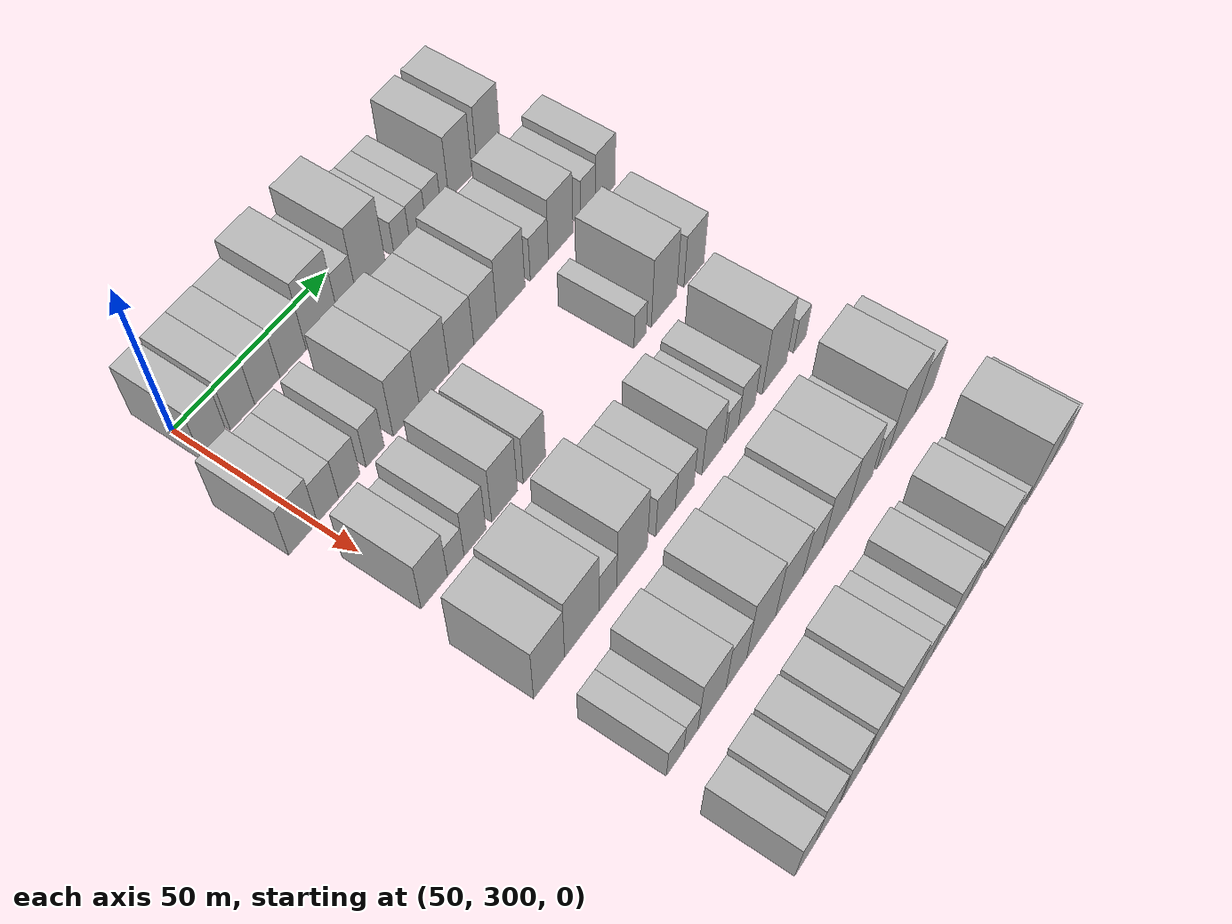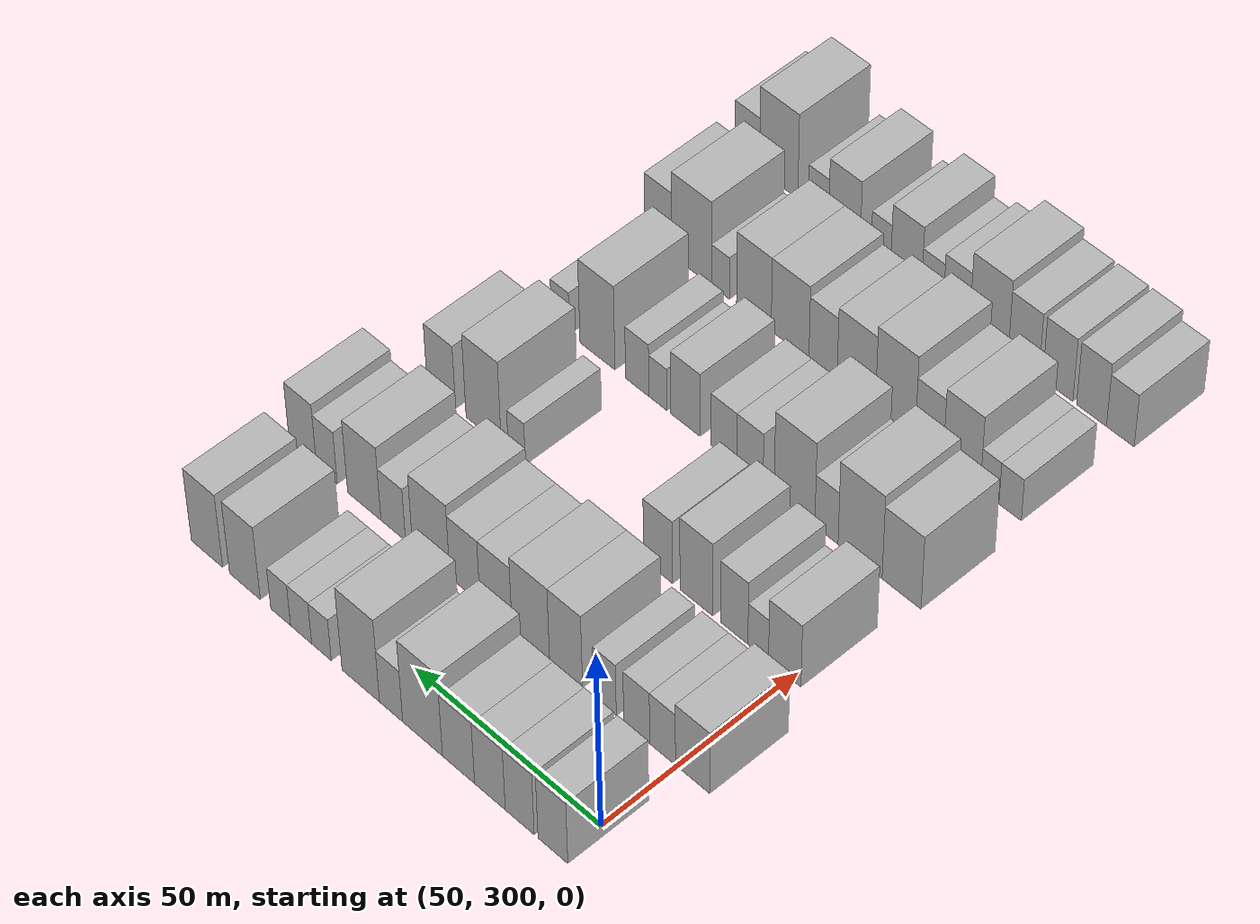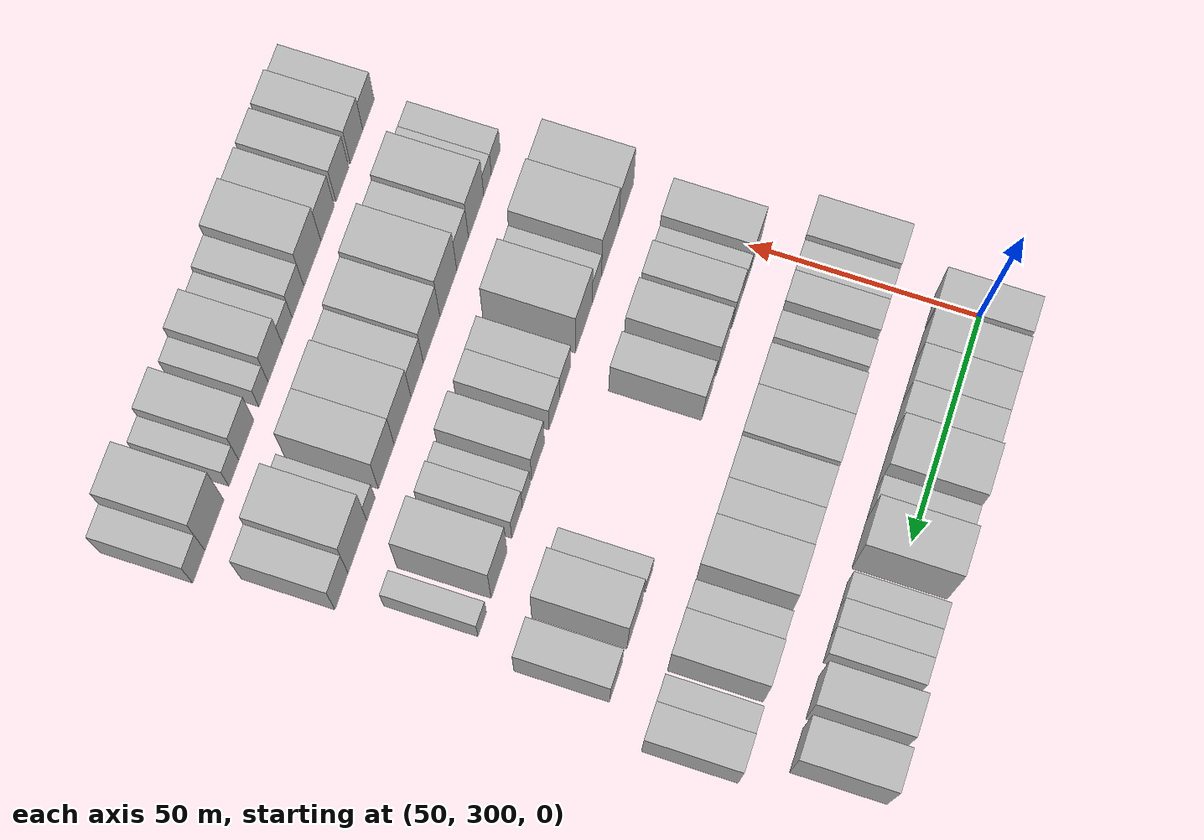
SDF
<sdf version="1.6">
 <world name="default">
  <model name="building_95">
   <static>1</static>
   <pose>50.0000 301.9949 0 0.000000 0.000000 0.000000</pose>
   <link name="link">
    <pose>0 0 9.00 0 0 0</pose>
    <collision name="collision"><geometry><box><size>20.0000 7.8303 18.0000</size></box></geometry></collision>
    <visual name="visual">
     <cast_shadows>0</cast_shadows>
     <geometry><box><size>20.0000 7.8303 18.0000</size></box></geometry>
     <material>
      <script>
       <uri>model://HANNAS_wall/materials/scripts</uri>
       <uri>model://HANNAS_wall/materials/textures</uri>
       <name>vrc/HANNAS_wall</name>
      </script>
     </material>
    </visual>
   </link>
  </model>
  <model name="building_96">
   <static>1</static>
   <pose>50.0000 310.7511 0 0.000000 0.000000 0.000000</pose>
   <link name="link">
    <pose>0 0 9.00 0 0 0</pose>
    <collision name="collision"><geometry><box><size>20.0000 7.6822 18.0000</size></box></geometry></collision>
    <visual name="visual">
     <cast_shadows>0</cast_shadows>
     <geometry><box><size>20.0000 7.6822 18.0000</size></box></geometry>
     <material>
      <script>
       <uri>model://HANNAS_wall/materials/scripts</uri>
       <uri>model://HANNAS_wall/materials/textures</uri>
       <name>vrc/HANNAS_wall</name>
      </script>
     </material>
    </visual>
   </link>
  </model>
  <model name="building_97">
   <static>1</static>
   <pose>50.0000 318.6927 0 0.000000 0.000000 0.000000</pose>
   <link name="link">
    <pose>0 0 9.00 0 0 0</pose>
    <collision name="collision"><geometry><box><size>20.0000 8.2009 18.0000</size></box></geometry></collision>
    <visual name="visual">
     <cast_shadows>0</cast_shadows>
     <geometry><box><size>20.0000 8.2009 18.0000</size></box></geometry>
     <material>
      <script>
       <uri>model://HANNAS_wall/materials/scripts</uri>
       <uri>model://HANNAS_wall/materials/textures</uri>
       <name>vrc/HANNAS_wall</name>
      </script>
     </material>
    </visual>
   </link>
  </model>
  <model name="building_98">
   <static>1</static>
   <pose>50.0000 327.1331 0 0.000000 0.000000 0.000000</pose>
   <link name="link">
    <pose>0 0 9.00 0 0 0</pose>
    <collision name="collision"><geometry><box><size>20.0000 8.6799 18.0000</size></box></geometry></collision>
    <visual name="visual">
     <cast_shadows>0</cast_shadows>
     <geometry><box><size>20.0000 8.6799 18.0000</size></box></geometry>
     <material>
      <script>
       <uri>model://HANNAS_wall/materials/scripts</uri>
       <uri>model://HANNAS_wall/materials/textures</uri>
       <name>vrc/HANNAS_wall</name>
      </script>
     </material>
    </visual>
   </link>
  </model>
  <model name="building_99">
   <static>1</static>
   <pose>50.0000 336.8972 0 0.000000 0.000000 0.000000</pose>
   <link name="link">
    <pose>0 0 12.00 0 0 0</pose>
    <collision name="collision"><geometry><box><size>20.0000 10.8483 24.0000</size></box></geometry></collision>
    <visual name="visual">
     <cast_shadows>0</cast_shadows>
     <geometry><box><size>20.0000 10.8483 24.0000</size></box></geometry>
     <material>
      <script>
       <uri>model://HANNAS_wall/materials/scripts</uri>
       <uri>model://HANNAS_wall/materials/textures</uri>
       <name>vrc/HANNAS_wall</name>
      </script>
     </material>
    </visual>
   </link>
  </model>
  <model name="building_100">
   <static>1</static>
   <pose>50.0000 345.5221 0 0.000000 0.000000 0.000000</pose>
   <link name="link">
    <pose>0 0 7.50 0 0 0</pose>
    <collision name="collision"><geometry><box><size>20.0000 6.4016 15.0000</size></box></geometry></collision>
    <visual name="visual">
     <cast_shadows>0</cast_shadows>
     <geometry><box><size>20.0000 6.4016 15.0000</size></box></geometry>
     <material>
      <script>
       <uri>model://HANNAS_wall/materials/scripts</uri>
       <uri>model://HANNAS_wall/materials/textures</uri>
       <name>vrc/HANNAS_wall</name>
      </script>
     </material>
    </visual>
   </link>
  </model>
  <model name="building_101">
   <static>1</static>
   <pose>50.0000 353.9289 0 0.000000 0.000000 0.000000</pose>
   <link name="link">
    <pose>0 0 12.00 0 0 0</pose>
    <collision name="collision"><geometry><box><size>20.0000 10.4119 24.0000</size></box></geometry></collision>
    <visual name="visual">
     <cast_shadows>0</cast_shadows>
     <geometry><box><size>20.0000 10.4119 24.0000</size></box></geometry>
     <material>
      <script>
       <uri>model://HANNAS_wall/materials/scripts</uri>
       <uri>model://HANNAS_wall/materials/textures</uri>
       <name>vrc/HANNAS_wall</name>
      </script>
     </material>
    </visual>
   </link>
  </model>
  <model name="building_102">
   <static>1</static>
   <pose>50.0000 364.8991 0 0.000000 0.000000 0.000000</pose>
   <link name="link">
    <pose>0 0 6.00 0 0 0</pose>
    <collision name="collision"><geometry><box><size>20.0000 5.5285 12.0000</size></box></geometry></collision>
    <visual name="visual">
     <cast_shadows>0</cast_shadows>
     <geometry><box><size>20.0000 5.5285 12.0000</size></box></geometry>
     <material>
      <script>
       <uri>model://HANNAS_wall/materials/scripts</uri>
       <uri>model://HANNAS_wall/materials/textures</uri>
       <name>vrc/HANNAS_wall</name>
      </script>
     </material>
    </visual>
   </link>
  </model>
  <model name="building_103">
   <static>1</static>
   <pose>50.0000 370.6420 0 0.000000 0.000000 0.000000</pose>
   <link name="link">
    <pose>0 0 6.00 0 0 0</pose>
    <collision name="collision"><geometry><box><size>20.0000 5.9574 12.0000</size></box></geometry></collision>
    <visual name="visual">
     <cast_shadows>0</cast_shadows>
     <geometry><box><size>20.0000 5.9574 12.0000</size></box></geometry>
     <material>
      <script>
       <uri>model://HANNAS_wall/materials/scripts</uri>
       <uri>model://HANNAS_wall/materials/textures</uri>
       <name>vrc/HANNAS_wall</name>
      </script>
     </material>
    </visual>
   </link>
  </model>
  <model name="building_104">
   <static>1</static>
   <pose>50.0000 376.4368 0 0.000000 0.000000 0.000000</pose>
   <link name="link">
    <pose>0 0 6.00 0 0 0</pose>
    <collision name="collision"><geometry><box><size>20.0000 5.6321 12.0000</size></box></geometry></collision>
    <visual name="visual">
     <cast_shadows>0</cast_shadows>
     <geometry><box><size>20.0000 5.6321 12.0000</size></box></geometry>
     <material>
      <script>
       <uri>model://HANNAS_wall/materials/scripts</uri>
       <uri>model://HANNAS_wall/materials/textures</uri>
       <name>vrc/HANNAS_wall</name>
      </script>
     </material>
    </visual>
   </link>
  </model>
  <model name="building_105">
   <static>1</static>
   <pose>50.0000 386.6736 0 0.000000 0.000000 0.000000</pose>
   <link name="link">
    <pose>0 0 10.50 0 0 0</pose>
    <collision name="collision"><geometry><box><size>20.0000 8.8415 21.0000</size></box></geometry></collision>
    <visual name="visual">
     <cast_shadows>0</cast_shadows>
     <geometry><box><size>20.0000 8.8415 21.0000</size></box></geometry>
     <material>
      <script>
       <uri>model://HANNAS_wall/materials/scripts</uri>
       <uri>model://HANNAS_wall/materials/textures</uri>
       <name>vrc/HANNAS_wall</name>
      </script>
     </material>
    </visual>
   </link>
  </model>
  <model name="building_106">
   <static>1</static>
   <pose>50.0000 397.6330 0 0.000000 0.000000 0.000000</pose>
   <link name="link">
    <pose>0 0 10.50 0 0 0</pose>
    <collision name="collision"><geometry><box><size>20.0000 9.0774 21.0000</size></box></geometry></collision>
    <visual name="visual">
     <cast_shadows>0</cast_shadows>
     <geometry><box><size>20.0000 9.0774 21.0000</size></box></geometry>
     <material>
      <script>
       <uri>model://HANNAS_wall/materials/scripts</uri>
       <uri>model://HANNAS_wall/materials/textures</uri>
       <name>vrc/HANNAS_wall</name>
      </script>
     </material>
    </visual>
   </link>
  </model>
  <model name="building_210">
   <static>1</static>
   <pose>79.0000 295.9881 0 0.000000 0.000000 0.000000</pose>
   <link name="link">
    <pose>0 0 9.00 0 0 0</pose>
    <collision name="collision"><geometry><box><size>20.0000 8.9374 18.0000</size></box></geometry></collision>
    <visual name="visual">
     <cast_shadows>0</cast_shadows>
     <geometry><box><size>20.0000 8.9374 18.0000</size></box></geometry>
     <material>
      <script>
       <uri>model://HANNAS_wall/materials/scripts</uri>
       <uri>model://HANNAS_wall/materials/textures</uri>
       <name>vrc/HANNAS_wall</name>
      </script>
     </material>
    </visual>
   </link>
  </model>
  <model name="building_211">
   <static>1</static>
   <pose>79.0000 303.8336 0 0.000000 0.000000 0.000000</pose>
   <link name="link">
    <pose>0 0 7.50 0 0 0</pose>
    <collision name="collision"><geometry><box><size>20.0000 6.7536 15.0000</size></box></geometry></collision>
    <visual name="visual">
     <cast_shadows>0</cast_shadows>
     <geometry><box><size>20.0000 6.7536 15.0000</size></box></geometry>
     <material>
      <script>
       <uri>model://HANNAS_wall/materials/scripts</uri>
       <uri>model://HANNAS_wall/materials/textures</uri>
       <name>vrc/HANNAS_wall</name>
      </script>
     </material>
    </visual>
   </link>
  </model>
  <model name="building_212">
   <static>1</static>
   <pose>79.0000 310.6537 0 0.000000 0.000000 0.000000</pose>
   <link name="link">
    <pose>0 0 7.50 0 0 0</pose>
    <collision name="collision"><geometry><box><size>20.0000 6.8866 15.0000</size></box></geometry></collision>
    <visual name="visual">
     <cast_shadows>0</cast_shadows>
     <geometry><box><size>20.0000 6.8866 15.0000</size></box></geometry>
     <material>
      <script>
       <uri>model://HANNAS_wall/materials/scripts</uri>
       <uri>model://HANNAS_wall/materials/textures</uri>
       <name>vrc/HANNAS_wall</name>
      </script>
     </material>
    </visual>
   </link>
  </model>
  <model name="building_213">
   <static>1</static>
   <pose>79.0000 319.1050 0 0.000000 0.000000 0.000000</pose>
   <link name="link">
    <pose>0 0 7.50 0 0 0</pose>
    <collision name="collision"><geometry><box><size>20.0000 6.0159 15.0000</size></box></geometry></collision>
    <visual name="visual">
     <cast_shadows>0</cast_shadows>
     <geometry><box><size>20.0000 6.0159 15.0000</size></box></geometry>
     <material>
      <script>
       <uri>model://HANNAS_wall/materials/scripts</uri>
       <uri>model://HANNAS_wall/materials/textures</uri>
       <name>vrc/HANNAS_wall</name>
      </script>
     </material>
    </visual>
   </link>
  </model>
  <model name="building_214">
   <static>1</static>
   <pose>79.0000 329.5759 0 0.000000 0.000000 0.000000</pose>
   <link name="link">
    <pose>0 0 10.50 0 0 0</pose>
    <collision name="collision"><geometry><box><size>20.0000 8.9259 21.0000</size></box></geometry></collision>
    <visual name="visual">
     <cast_shadows>0</cast_shadows>
     <geometry><box><size>20.0000 8.9259 21.0000</size></box></geometry>
     <material>
      <script>
       <uri>model://HANNAS_wall/materials/scripts</uri>
       <uri>model://HANNAS_wall/materials/textures</uri>
       <name>vrc/HANNAS_wall</name>
      </script>
     </material>
    </visual>
   </link>
  </model>
  <model name="building_215">
   <static>1</static>
   <pose>79.0000 339.1537 0 0.000000 0.000000 0.000000</pose>
   <link name="link">
    <pose>0 0 10.50 0 0 0</pose>
    <collision name="collision"><geometry><box><size>20.0000 10.2297 21.0000</size></box></geometry></collision>
    <visual name="visual">
     <cast_shadows>0</cast_shadows>
     <geometry><box><size>20.0000 10.2297 21.0000</size></box></geometry>
     <material>
      <script>
       <uri>model://HANNAS_wall/materials/scripts</uri>
       <uri>model://HANNAS_wall/materials/textures</uri>
       <name>vrc/HANNAS_wall</name>
      </script>
     </material>
    </visual>
   </link>
  </model>
  <model name="building_216">
   <static>1</static>
   <pose>79.0000 348.6950 0 0.000000 0.000000 0.000000</pose>
   <link name="link">
    <pose>0 0 9.00 0 0 0</pose>
    <collision name="collision"><geometry><box><size>20.0000 8.8529 18.0000</size></box></geometry></collision>
    <visual name="visual">
     <cast_shadows>0</cast_shadows>
     <geometry><box><size>20.0000 8.8529 18.0000</size></box></geometry>
     <material>
      <script>
       <uri>model://HANNAS_wall/materials/scripts</uri>
       <uri>model://HANNAS_wall/materials/textures</uri>
       <name>vrc/HANNAS_wall</name>
      </script>
     </material>
    </visual>
   </link>
  </model>
  <model name="building_217">
   <static>1</static>
   <pose>79.0000 357.3104 0 0.000000 0.000000 0.000000</pose>
   <link name="link">
    <pose>0 0 9.00 0 0 0</pose>
    <collision name="collision"><geometry><box><size>20.0000 8.3779 18.0000</size></box></geometry></collision>
    <visual name="visual">
     <cast_shadows>0</cast_shadows>
     <geometry><box><size>20.0000 8.3779 18.0000</size></box></geometry>
     <material>
      <script>
       <uri>model://HANNAS_wall/materials/scripts</uri>
       <uri>model://HANNAS_wall/materials/textures</uri>
       <name>vrc/HANNAS_wall</name>
      </script>
     </material>
    </visual>
   </link>
  </model>
  <model name="building_218">
   <static>1</static>
   <pose>79.0000 366.7439 0 0.000000 0.000000 0.000000</pose>
   <link name="link">
    <pose>0 0 10.50 0 0 0</pose>
    <collision name="collision"><geometry><box><size>20.0000 10.4891 21.0000</size></box></geometry></collision>
    <visual name="visual">
     <cast_shadows>0</cast_shadows>
     <geometry><box><size>20.0000 10.4891 21.0000</size></box></geometry>
     <material>
      <script>
       <uri>model://HANNAS_wall/materials/scripts</uri>
       <uri>model://HANNAS_wall/materials/textures</uri>
       <name>vrc/HANNAS_wall</name>
      </script>
     </material>
    </visual>
   </link>
  </model>
  <model name="building_219">
   <static>1</static>
   <pose>79.0000 377.4814 0 0.000000 0.000000 0.000000</pose>
   <link name="link">
    <pose>0 0 7.50 0 0 0</pose>
    <collision name="collision"><geometry><box><size>20.0000 6.9858 15.0000</size></box></geometry></collision>
    <visual name="visual">
     <cast_shadows>0</cast_shadows>
     <geometry><box><size>20.0000 6.9858 15.0000</size></box></geometry>
     <material>
      <script>
       <uri>model://HANNAS_wall/materials/scripts</uri>
       <uri>model://HANNAS_wall/materials/textures</uri>
       <name>vrc/HANNAS_wall</name>
      </script>
     </material>
    </visual>
   </link>
  </model>
  <model name="building_220">
   <static>1</static>
   <pose>79.0000 385.7401 0 0.000000 0.000000 0.000000</pose>
   <link name="link">
    <pose>0 0 10.50 0 0 0</pose>
    <collision name="collision"><geometry><box><size>20.0000 9.5316 21.0000</size></box></geometry></collision>
    <visual name="visual">
     <cast_shadows>0</cast_shadows>
     <geometry><box><size>20.0000 9.5316 21.0000</size></box></geometry>
     <material>
      <script>
       <uri>model://HANNAS_wall/materials/scripts</uri>
       <uri>model://HANNAS_wall/materials/textures</uri>
       <name>vrc/HANNAS_wall</name>
      </script>
     </material>
    </visual>
   </link>
  </model>
  <model name="building_221">
   <static>1</static>
   <pose>79.0000 396.5077 0 0.000000 0.000000 0.000000</pose>
   <link name="link">
    <pose>0 0 7.50 0 0 0</pose>
    <collision name="collision"><geometry><box><size>20.0000 6.0036 15.0000</size></box></geometry></collision>
    <visual name="visual">
     <cast_shadows>0</cast_shadows>
     <geometry><box><size>20.0000 6.0036 15.0000</size></box></geometry>
     <material>
      <script>
       <uri>model://HANNAS_wall/materials/scripts</uri>
       <uri>model://HANNAS_wall/materials/textures</uri>
       <name>vrc/HANNAS_wall</name>
      </script>
     </material>
    </visual>
   </link>
  </model>
  <model name="building_222">
   <static>1</static>
   <pose>79.0000 403.4532 0 0.000000 0.000000 0.000000</pose>
   <link name="link">
    <pose>0 0 9.00 0 0 0</pose>
    <collision name="collision"><geometry><box><size>20.0000 7.8873 18.0000</size></box></geometry></collision>
    <visual name="visual">
     <cast_shadows>0</cast_shadows>
     <geometry><box><size>20.0000 7.8873 18.0000</size></box></geometry>
     <material>
      <script>
       <uri>model://HANNAS_wall/materials/scripts</uri>
       <uri>model://HANNAS_wall/materials/textures</uri>
       <name>vrc/HANNAS_wall</name>
      </script>
     </material>
    </visual>
   </link>
  </model>
  <model name="building_323">
   <static>1</static>
   <pose>108.0000 301.5195 0 0.000000 0.000000 0.000000</pose>
   <link name="link">
    <pose>0 0 9.00 0 0 0</pose>
    <collision name="collision"><geometry><box><size>20.0000 8.5074 18.0000</size></box></geometry></collision>
    <visual name="visual">
     <cast_shadows>0</cast_shadows>
     <geometry><box><size>20.0000 8.5074 18.0000</size></box></geometry>
     <material>
      <script>
       <uri>model://HANNAS_wall/materials/scripts</uri>
       <uri>model://HANNAS_wall/materials/textures</uri>
       <name>vrc/HANNAS_wall</name>
      </script>
     </material>
    </visual>
   </link>
  </model>
  <model name="building_324">
   <static>1</static>
   <pose>108.0000 308.4917 0 0.000000 0.000000 0.000000</pose>
   <link name="link">
    <pose>0 0 6.00 0 0 0</pose>
    <collision name="collision"><geometry><box><size>20.0000 5.4371 12.0000</size></box></geometry></collision>
    <visual name="visual">
     <cast_shadows>0</cast_shadows>
     <geometry><box><size>20.0000 5.4371 12.0000</size></box></geometry>
     <material>
      <script>
       <uri>model://HANNAS_wall/materials/scripts</uri>
       <uri>model://HANNAS_wall/materials/textures</uri>
       <name>vrc/HANNAS_wall</name>
      </script>
     </material>
    </visual>
   </link>
  </model>
  <model name="building_325">
   <static>1</static>
   <pose>108.0000 314.8712 0 0.000000 0.000000 0.000000</pose>
   <link name="link">
    <pose>0 0 9.00 0 0 0</pose>
    <collision name="collision"><geometry><box><size>20.0000 7.3219 18.0000</size></box></geometry></collision>
    <visual name="visual">
     <cast_shadows>0</cast_shadows>
     <geometry><box><size>20.0000 7.3219 18.0000</size></box></geometry>
     <material>
      <script>
       <uri>model://HANNAS_wall/materials/scripts</uri>
       <uri>model://HANNAS_wall/materials/textures</uri>
       <name>vrc/HANNAS_wall</name>
      </script>
     </material>
    </visual>
   </link>
  </model>
  <model name="building_326">
   <static>1</static>
   <pose>108.0000 324.9392 0 0.000000 0.000000 0.000000</pose>
   <link name="link">
    <pose>0 0 10.50 0 0 0</pose>
    <collision name="collision"><geometry><box><size>20.0000 8.8140 21.0000</size></box></geometry></collision>
    <visual name="visual">
     <cast_shadows>0</cast_shadows>
     <geometry><box><size>20.0000 8.8140 21.0000</size></box></geometry>
     <material>
      <script>
       <uri>model://HANNAS_wall/materials/scripts</uri>
       <uri>model://HANNAS_wall/materials/textures</uri>
       <name>vrc/HANNAS_wall</name>
      </script>
     </material>
    </visual>
   </link>
  </model>
  <model name="building_327">
   <static>1</static>
   <pose>108.0000 335.2650 0 0.000000 0.000000 0.000000</pose>
   <link name="link">
    <pose>0 0 9.00 0 0 0</pose>
    <collision name="collision"><geometry><box><size>20.0000 7.8375 18.0000</size></box></geometry></collision>
    <visual name="visual">
     <cast_shadows>0</cast_shadows>
     <geometry><box><size>20.0000 7.8375 18.0000</size></box></geometry>
     <material>
      <script>
       <uri>model://HANNAS_wall/materials/scripts</uri>
       <uri>model://HANNAS_wall/materials/textures</uri>
       <name>vrc/HANNAS_wall</name>
      </script>
     </material>
    </visual>
   </link>
  </model>
  <model name="building_328">
   <static>1</static>
   <pose>108.0000 374.4203 0 0.000000 0.000000 0.000000</pose>
   <link name="link">
    <pose>0 0 6.00 0 0 0</pose>
    <collision name="collision"><geometry><box><size>20.0000 4.8244 12.0000</size></box></geometry></collision>
    <visual name="visual">
     <cast_shadows>0</cast_shadows>
     <geometry><box><size>20.0000 4.8244 12.0000</size></box></geometry>
     <material>
      <script>
       <uri>model://HANNAS_wall/materials/scripts</uri>
       <uri>model://HANNAS_wall/materials/textures</uri>
       <name>vrc/HANNAS_wall</name>
      </script>
     </material>
    </visual>
   </link>
  </model>
  <model name="building_329">
   <static>1</static>
   <pose>108.0000 383.8611 0 0.000000 0.000000 0.000000</pose>
   <link name="link">
    <pose>0 0 12.00 0 0 0</pose>
    <collision name="collision"><geometry><box><size>20.0000 10.0571 24.0000</size></box></geometry></collision>
    <visual name="visual">
     <cast_shadows>0</cast_shadows>
     <geometry><box><size>20.0000 10.0571 24.0000</size></box></geometry>
     <material>
      <script>
       <uri>model://HANNAS_wall/materials/scripts</uri>
       <uri>model://HANNAS_wall/materials/textures</uri>
       <name>vrc/HANNAS_wall</name>
      </script>
     </material>
    </visual>
   </link>
  </model>
  <model name="building_330">
   <static>1</static>
   <pose>108.0000 395.9954 0 0.000000 0.000000 0.000000</pose>
   <link name="link">
    <pose>0 0 9.00 0 0 0</pose>
    <collision name="collision"><geometry><box><size>20.0000 8.2115 18.0000</size></box></geometry></collision>
    <visual name="visual">
     <cast_shadows>0</cast_shadows>
     <geometry><box><size>20.0000 8.2115 18.0000</size></box></geometry>
     <material>
      <script>
       <uri>model://HANNAS_wall/materials/scripts</uri>
       <uri>model://HANNAS_wall/materials/textures</uri>
       <name>vrc/HANNAS_wall</name>
      </script>
     </material>
    </visual>
   </link>
  </model>
  <model name="building_438">
   <static>1</static>
   <pose>137.0000 299.7351 0 0.000000 0.000000 0.000000</pose>
   <link name="link">
    <pose>0 0 10.50 0 0 0</pose>
    <collision name="collision"><geometry><box><size>20.0000 10.1794 21.0000</size></box></geometry></collision>
    <visual name="visual">
     <cast_shadows>0</cast_shadows>
     <geometry><box><size>20.0000 10.1794 21.0000</size></box></geometry>
     <material>
      <script>
       <uri>model://HANNAS_wall/materials/scripts</uri>
       <uri>model://HANNAS_wall/materials/textures</uri>
       <name>vrc/HANNAS_wall</name>
      </script>
     </material>
    </visual>
   </link>
  </model>
  <model name="building_439">
   <static>1</static>
   <pose>137.0000 310.6420 0 0.000000 0.000000 0.000000</pose>
   <link name="link">
    <pose>0 0 12.00 0 0 0</pose>
    <collision name="collision"><geometry><box><size>20.0000 11.6344 24.0000</size></box></geometry></collision>
    <visual name="visual">
     <cast_shadows>0</cast_shadows>
     <geometry><box><size>20.0000 11.6344 24.0000</size></box></geometry>
     <material>
      <script>
       <uri>model://HANNAS_wall/materials/scripts</uri>
       <uri>model://HANNAS_wall/materials/textures</uri>
       <name>vrc/HANNAS_wall</name>
      </script>
     </material>
    </visual>
   </link>
  </model>
  <model name="building_440">
   <static>1</static>
   <pose>137.0000 319.5635 0 0.000000 0.000000 0.000000</pose>
   <link name="link">
    <pose>0 0 7.50 0 0 0</pose>
    <collision name="collision"><geometry><box><size>20.0000 6.2085 15.0000</size></box></geometry></collision>
    <visual name="visual">
     <cast_shadows>0</cast_shadows>
     <geometry><box><size>20.0000 6.2085 15.0000</size></box></geometry>
     <material>
      <script>
       <uri>model://HANNAS_wall/materials/scripts</uri>
       <uri>model://HANNAS_wall/materials/textures</uri>
       <name>vrc/HANNAS_wall</name>
      </script>
     </material>
    </visual>
   </link>
  </model>
  <model name="building_441">
   <static>1</static>
   <pose>137.0000 328.1344 0 0.000000 0.000000 0.000000</pose>
   <link name="link">
    <pose>0 0 12.00 0 0 0</pose>
    <collision name="collision"><geometry><box><size>20.0000 10.9333 24.0000</size></box></geometry></collision>
    <visual name="visual">
     <cast_shadows>0</cast_shadows>
     <geometry><box><size>20.0000 10.9333 24.0000</size></box></geometry>
     <material>
      <script>
       <uri>model://HANNAS_wall/materials/scripts</uri>
       <uri>model://HANNAS_wall/materials/textures</uri>
       <name>vrc/HANNAS_wall</name>
      </script>
     </material>
    </visual>
   </link>
  </model>
  <model name="building_442">
   <static>1</static>
   <pose>137.0000 340.2000 0 0.000000 0.000000 0.000000</pose>
   <link name="link">
    <pose>0 0 7.50 0 0 0</pose>
    <collision name="collision"><geometry><box><size>20.0000 7.1979 15.0000</size></box></geometry></collision>
    <visual name="visual">
     <cast_shadows>0</cast_shadows>
     <geometry><box><size>20.0000 7.1979 15.0000</size></box></geometry>
     <material>
      <script>
       <uri>model://HANNAS_wall/materials/scripts</uri>
       <uri>model://HANNAS_wall/materials/textures</uri>
       <name>vrc/HANNAS_wall</name>
      </script>
     </material>
    </visual>
   </link>
  </model>
  <model name="building_443">
   <static>1</static>
   <pose>137.0000 347.3342 0 0.000000 0.000000 0.000000</pose>
   <link name="link">
    <pose>0 0 7.50 0 0 0</pose>
    <collision name="collision"><geometry><box><size>20.0000 7.0704 15.0000</size></box></geometry></collision>
    <visual name="visual">
     <cast_shadows>0</cast_shadows>
     <geometry><box><size>20.0000 7.0704 15.0000</size></box></geometry>
     <material>
      <script>
       <uri>model://HANNAS_wall/materials/scripts</uri>
       <uri>model://HANNAS_wall/materials/textures</uri>
       <name>vrc/HANNAS_wall</name>
      </script>
     </material>
    </visual>
   </link>
  </model>
  <model name="building_444">
   <static>1</static>
   <pose>137.0000 357.9766 0 0.000000 0.000000 0.000000</pose>
   <link name="link">
    <pose>0 0 9.00 0 0 0</pose>
    <collision name="collision"><geometry><box><size>20.0000 8.2145 18.0000</size></box></geometry></collision>
    <visual name="visual">
     <cast_shadows>0</cast_shadows>
     <geometry><box><size>20.0000 8.2145 18.0000</size></box></geometry>
     <material>
      <script>
       <uri>model://HANNAS_wall/materials/scripts</uri>
       <uri>model://HANNAS_wall/materials/textures</uri>
       <name>vrc/HANNAS_wall</name>
      </script>
     </material>
    </visual>
   </link>
  </model>
  <model name="building_445">
   <static>1</static>
   <pose>137.0000 365.5912 0 0.000000 0.000000 0.000000</pose>
   <link name="link">
    <pose>0 0 6.00 0 0 0</pose>
    <collision name="collision"><geometry><box><size>20.0000 5.0147 12.0000</size></box></geometry></collision>
    <visual name="visual">
     <cast_shadows>0</cast_shadows>
     <geometry><box><size>20.0000 5.0147 12.0000</size></box></geometry>
     <material>
      <script>
       <uri>model://HANNAS_wall/materials/scripts</uri>
       <uri>model://HANNAS_wall/materials/textures</uri>
       <name>vrc/HANNAS_wall</name>
      </script>
     </material>
    </visual>
   </link>
  </model>
  <model name="building_446">
   <static>1</static>
   <pose>137.0000 371.3857 0 0.000000 0.000000 0.000000</pose>
   <link name="link">
    <pose>0 0 7.50 0 0 0</pose>
    <collision name="collision"><geometry><box><size>20.0000 6.5745 15.0000</size></box></geometry></collision>
    <visual name="visual">
     <cast_shadows>0</cast_shadows>
     <geometry><box><size>20.0000 6.5745 15.0000</size></box></geometry>
     <material>
      <script>
       <uri>model://HANNAS_wall/materials/scripts</uri>
       <uri>model://HANNAS_wall/materials/textures</uri>
       <name>vrc/HANNAS_wall</name>
      </script>
     </material>
    </visual>
   </link>
  </model>
  <model name="building_447">
   <static>1</static>
   <pose>137.0000 382.6548 0 0.000000 0.000000 0.000000</pose>
   <link name="link">
    <pose>0 0 12.00 0 0 0</pose>
    <collision name="collision"><geometry><box><size>20.0000 9.9636 24.0000</size></box></geometry></collision>
    <visual name="visual">
     <cast_shadows>0</cast_shadows>
     <geometry><box><size>20.0000 9.9636 24.0000</size></box></geometry>
     <material>
      <script>
       <uri>model://HANNAS_wall/materials/scripts</uri>
       <uri>model://HANNAS_wall/materials/textures</uri>
       <name>vrc/HANNAS_wall</name>
      </script>
     </material>
    </visual>
   </link>
  </model>
  <model name="building_448">
   <static>1</static>
   <pose>137.0000 393.2306 0 0.000000 0.000000 0.000000</pose>
   <link name="link">
    <pose>0 0 6.00 0 0 0</pose>
    <collision name="collision"><geometry><box><size>20.0000 5.1880 12.0000</size></box></geometry></collision>
    <visual name="visual">
     <cast_shadows>0</cast_shadows>
     <geometry><box><size>20.0000 5.1880 12.0000</size></box></geometry>
     <material>
      <script>
       <uri>model://HANNAS_wall/materials/scripts</uri>
       <uri>model://HANNAS_wall/materials/textures</uri>
       <name>vrc/HANNAS_wall</name>
      </script>
     </material>
    </visual>
   </link>
  </model>
  <model name="building_547">
   <static>1</static>
   <pose>166.0000 299.2260 0 0.000000 0.000000 0.000000</pose>
   <link name="link">
    <pose>0 0 6.00 0 0 0</pose>
    <collision name="collision"><geometry><box><size>20.0000 5.8417 12.0000</size></box></geometry></collision>
    <visual name="visual">
     <cast_shadows>0</cast_shadows>
     <geometry><box><size>20.0000 5.8417 12.0000</size></box></geometry>
     <material>
      <script>
       <uri>model://HANNAS_wall/materials/scripts</uri>
       <uri>model://HANNAS_wall/materials/textures</uri>
       <name>vrc/HANNAS_wall</name>
      </script>
     </material>
    </visual>
   </link>
  </model>
  <model name="building_548">
   <static>1</static>
   <pose>166.0000 304.6008 0 0.000000 0.000000 0.000000</pose>
   <link name="link">
    <pose>0 0 6.00 0 0 0</pose>
    <collision name="collision"><geometry><box><size>20.0000 4.9081 12.0000</size></box></geometry></collision>
    <visual name="visual">
     <cast_shadows>0</cast_shadows>
     <geometry><box><size>20.0000 4.9081 12.0000</size></box></geometry>
     <material>
      <script>
       <uri>model://HANNAS_wall/materials/scripts</uri>
       <uri>model://HANNAS_wall/materials/textures</uri>
       <name>vrc/HANNAS_wall</name>
      </script>
     </material>
    </visual>
   </link>
  </model>
  <model name="building_549">
   <static>1</static>
   <pose>166.0000 311.9845 0 0.000000 0.000000 0.000000</pose>
   <link name="link">
    <pose>0 0 10.50 0 0 0</pose>
    <collision name="collision"><geometry><box><size>20.0000 9.8592 21.0000</size></box></geometry></collision>
    <visual name="visual">
     <cast_shadows>0</cast_shadows>
     <geometry><box><size>20.0000 9.8592 21.0000</size></box></geometry>
     <material>
      <script>
       <uri>model://HANNAS_wall/materials/scripts</uri>
       <uri>model://HANNAS_wall/materials/textures</uri>
       <name>vrc/HANNAS_wall</name>
      </script>
     </material>
    </visual>
   </link>
  </model>
  <model name="building_550">
   <static>1</static>
   <pose>166.0000 320.6662 0 0.000000 0.000000 0.000000</pose>
   <link name="link">
    <pose>0 0 9.00 0 0 0</pose>
    <collision name="collision"><geometry><box><size>20.0000 7.5044 18.0000</size></box></geometry></collision>
    <visual name="visual">
     <cast_shadows>0</cast_shadows>
     <geometry><box><size>20.0000 7.5044 18.0000</size></box></geometry>
     <material>
      <script>
       <uri>model://HANNAS_wall/materials/scripts</uri>
       <uri>model://HANNAS_wall/materials/textures</uri>
       <name>vrc/HANNAS_wall</name>
      </script>
     </material>
    </visual>
   </link>
  </model>
  <model name="building_551">
   <static>1</static>
   <pose>166.0000 329.7787 0 0.000000 0.000000 0.000000</pose>
   <link name="link">
    <pose>0 0 12.00 0 0 0</pose>
    <collision name="collision"><geometry><box><size>20.0000 10.7205 24.0000</size></box></geometry></collision>
    <visual name="visual">
     <cast_shadows>0</cast_shadows>
     <geometry><box><size>20.0000 10.7205 24.0000</size></box></geometry>
     <material>
      <script>
       <uri>model://HANNAS_wall/materials/scripts</uri>
       <uri>model://HANNAS_wall/materials/textures</uri>
       <name>vrc/HANNAS_wall</name>
      </script>
     </material>
    </visual>
   </link>
  </model>
  <model name="building_552">
   <static>1</static>
   <pose>166.0000 340.3600 0 0.000000 0.000000 0.000000</pose>
   <link name="link">
    <pose>0 0 10.50 0 0 0</pose>
    <collision name="collision"><geometry><box><size>20.0000 10.4420 21.0000</size></box></geometry></collision>
    <visual name="visual">
     <cast_shadows>0</cast_shadows>
     <geometry><box><size>20.0000 10.4420 21.0000</size></box></geometry>
     <material>
      <script>
       <uri>model://HANNAS_wall/materials/scripts</uri>
       <uri>model://HANNAS_wall/materials/textures</uri>
       <name>vrc/HANNAS_wall</name>
      </script>
     </material>
    </visual>
   </link>
  </model>
  <model name="building_553">
   <static>1</static>
   <pose>166.0000 349.4361 0 0.000000 0.000000 0.000000</pose>
   <link name="link">
    <pose>0 0 9.00 0 0 0</pose>
    <collision name="collision"><geometry><box><size>20.0000 7.7102 18.0000</size></box></geometry></collision>
    <visual name="visual">
     <cast_shadows>0</cast_shadows>
     <geometry><box><size>20.0000 7.7102 18.0000</size></box></geometry>
     <material>
      <script>
       <uri>model://HANNAS_wall/materials/scripts</uri>
       <uri>model://HANNAS_wall/materials/textures</uri>
       <name>vrc/HANNAS_wall</name>
      </script>
     </material>
    </visual>
   </link>
  </model>
  <model name="building_554">
   <static>1</static>
   <pose>166.0000 358.5202 0 0.000000 0.000000 0.000000</pose>
   <link name="link">
    <pose>0 0 10.50 0 0 0</pose>
    <collision name="collision"><geometry><box><size>20.0000 10.4581 21.0000</size></box></geometry></collision>
    <visual name="visual">
     <cast_shadows>0</cast_shadows>
     <geometry><box><size>20.0000 10.4581 21.0000</size></box></geometry>
     <material>
      <script>
       <uri>model://HANNAS_wall/materials/scripts</uri>
       <uri>model://HANNAS_wall/materials/textures</uri>
       <name>vrc/HANNAS_wall</name>
      </script>
     </material>
    </visual>
   </link>
  </model>
  <model name="building_555">
   <static>1</static>
   <pose>166.0000 368.6103 0 0.000000 0.000000 0.000000</pose>
   <link name="link">
    <pose>0 0 10.50 0 0 0</pose>
    <collision name="collision"><geometry><box><size>20.0000 9.7221 21.0000</size></box></geometry></collision>
    <visual name="visual">
     <cast_shadows>0</cast_shadows>
     <geometry><box><size>20.0000 9.7221 21.0000</size></box></geometry>
     <material>
      <script>
       <uri>model://HANNAS_wall/materials/scripts</uri>
       <uri>model://HANNAS_wall/materials/textures</uri>
       <name>vrc/HANNAS_wall</name>
      </script>
     </material>
    </visual>
   </link>
  </model>
  <model name="building_556">
   <static>1</static>
   <pose>166.0000 377.9942 0 0.000000 0.000000 0.000000</pose>
   <link name="link">
    <pose>0 0 6.00 0 0 0</pose>
    <collision name="collision"><geometry><box><size>20.0000 5.0457 12.0000</size></box></geometry></collision>
    <visual name="visual">
     <cast_shadows>0</cast_shadows>
     <geometry><box><size>20.0000 5.0457 12.0000</size></box></geometry>
     <material>
      <script>
       <uri>model://HANNAS_wall/materials/scripts</uri>
       <uri>model://HANNAS_wall/materials/textures</uri>
       <name>vrc/HANNAS_wall</name>
      </script>
     </material>
    </visual>
   </link>
  </model>
  <model name="building_557">
   <static>1</static>
   <pose>166.0000 386.1713 0 0.000000 0.000000 0.000000</pose>
   <link name="link">
    <pose>0 0 12.00 0 0 0</pose>
    <collision name="collision"><geometry><box><size>20.0000 11.3086 24.0000</size></box></geometry></collision>
    <visual name="visual">
     <cast_shadows>0</cast_shadows>
     <geometry><box><size>20.0000 11.3086 24.0000</size></box></geometry>
     <material>
      <script>
       <uri>model://HANNAS_wall/materials/scripts</uri>
       <uri>model://HANNAS_wall/materials/textures</uri>
       <name>vrc/HANNAS_wall</name>
      </script>
     </material>
    </visual>
   </link>
  </model>
  <model name="building_558">
   <static>1</static>
   <pose>166.0000 395.7407 0 0.000000 0.000000 0.000000</pose>
   <link name="link">
    <pose>0 0 9.00 0 0 0</pose>
    <collision name="collision"><geometry><box><size>20.0000 7.8301 18.0000</size></box></geometry></collision>
    <visual name="visual">
     <cast_shadows>0</cast_shadows>
     <geometry><box><size>20.0000 7.8301 18.0000</size></box></geometry>
     <material>
      <script>
       <uri>model://HANNAS_wall/materials/scripts</uri>
       <uri>model://HANNAS_wall/materials/textures</uri>
       <name>vrc/HANNAS_wall</name>
      </script>
     </material>
    </visual>
   </link>
  </model>
  <model name="building_666">
   <static>1</static>
   <pose>195.0000 297.5070 0 0.000000 0.000000 0.000000</pose>
   <link name="link">
    <pose>0 0 7.50 0 0 0</pose>
    <collision name="collision"><geometry><box><size>20.0000 7.2321 15.0000</size></box></geometry></collision>
    <visual name="visual">
     <cast_shadows>0</cast_shadows>
     <geometry><box><size>20.0000 7.2321 15.0000</size></box></geometry>
     <material>
      <script>
       <uri>model://HANNAS_wall/materials/scripts</uri>
       <uri>model://HANNAS_wall/materials/textures</uri>
       <name>vrc/HANNAS_wall</name>
      </script>
     </material>
    </visual>
   </link>
  </model>
  <model name="building_667">
   <static>1</static>
   <pose>195.0000 305.0574 0 0.000000 0.000000 0.000000</pose>
   <link name="link">
    <pose>0 0 9.00 0 0 0</pose>
    <collision name="collision"><geometry><box><size>20.0000 7.8687 18.0000</size></box></geometry></collision>
    <visual name="visual">
     <cast_shadows>0</cast_shadows>
     <geometry><box><size>20.0000 7.8687 18.0000</size></box></geometry>
     <material>
      <script>
       <uri>model://HANNAS_wall/materials/scripts</uri>
       <uri>model://HANNAS_wall/materials/textures</uri>
       <name>vrc/HANNAS_wall</name>
      </script>
     </material>
    </visual>
   </link>
  </model>
  <model name="building_668">
   <static>1</static>
   <pose>195.0000 313.9885 0 0.000000 0.000000 0.000000</pose>
   <link name="link">
    <pose>0 0 9.00 0 0 0</pose>
    <collision name="collision"><geometry><box><size>20.0000 7.9936 18.0000</size></box></geometry></collision>
    <visual name="visual">
     <cast_shadows>0</cast_shadows>
     <geometry><box><size>20.0000 7.9936 18.0000</size></box></geometry>
     <material>
      <script>
       <uri>model://HANNAS_wall/materials/scripts</uri>
       <uri>model://HANNAS_wall/materials/textures</uri>
       <name>vrc/HANNAS_wall</name>
      </script>
     </material>
    </visual>
   </link>
  </model>
  <model name="building_669">
   <static>1</static>
   <pose>195.0000 323.0984 0 0.000000 0.000000 0.000000</pose>
   <link name="link">
    <pose>0 0 9.00 0 0 0</pose>
    <collision name="collision"><geometry><box><size>20.0000 8.2261 18.0000</size></box></geometry></collision>
    <visual name="visual">
     <cast_shadows>0</cast_shadows>
     <geometry><box><size>20.0000 8.2261 18.0000</size></box></geometry>
     <material>
      <script>
       <uri>model://HANNAS_wall/materials/scripts</uri>
       <uri>model://HANNAS_wall/materials/textures</uri>
       <name>vrc/HANNAS_wall</name>
      </script>
     </material>
    </visual>
   </link>
  </model>
  <model name="building_670">
   <static>1</static>
   <pose>195.0000 332.4372 0 0.000000 0.000000 0.000000</pose>
   <link name="link">
    <pose>0 0 10.50 0 0 0</pose>
    <collision name="collision"><geometry><box><size>20.0000 10.4516 21.0000</size></box></geometry></collision>
    <visual name="visual">
     <cast_shadows>0</cast_shadows>
     <geometry><box><size>20.0000 10.4516 21.0000</size></box></geometry>
     <material>
      <script>
       <uri>model://HANNAS_wall/materials/scripts</uri>
       <uri>model://HANNAS_wall/materials/textures</uri>
       <name>vrc/HANNAS_wall</name>
      </script>
     </material>
    </visual>
   </link>
  </model>
  <model name="building_671">
   <static>1</static>
   <pose>195.0000 341.2519 0 0.000000 0.000000 0.000000</pose>
   <link name="link">
    <pose>0 0 7.50 0 0 0</pose>
    <collision name="collision"><geometry><box><size>20.0000 7.1779 15.0000</size></box></geometry></collision>
    <visual name="visual">
     <cast_shadows>0</cast_shadows>
     <geometry><box><size>20.0000 7.1779 15.0000</size></box></geometry>
     <material>
      <script>
       <uri>model://HANNAS_wall/materials/scripts</uri>
       <uri>model://HANNAS_wall/materials/textures</uri>
       <name>vrc/HANNAS_wall</name>
      </script>
     </material>
    </visual>
   </link>
  </model>
  <model name="building_672">
   <static>1</static>
   <pose>195.0000 347.8162 0 0.000000 0.000000 0.000000</pose>
   <link name="link">
    <pose>0 0 6.00 0 0 0</pose>
    <collision name="collision"><geometry><box><size>20.0000 5.9507 12.0000</size></box></geometry></collision>
    <visual name="visual">
     <cast_shadows>0</cast_shadows>
     <geometry><box><size>20.0000 5.9507 12.0000</size></box></geometry>
     <material>
      <script>
       <uri>model://HANNAS_wall/materials/scripts</uri>
       <uri>model://HANNAS_wall/materials/textures</uri>
       <name>vrc/HANNAS_wall</name>
      </script>
     </material>
    </visual>
   </link>
  </model>
  <model name="building_673">
   <static>1</static>
   <pose>195.0000 355.0692 0 0.000000 0.000000 0.000000</pose>
   <link name="link">
    <pose>0 0 9.00 0 0 0</pose>
    <collision name="collision"><geometry><box><size>20.0000 8.5552 18.0000</size></box></geometry></collision>
    <visual name="visual">
     <cast_shadows>0</cast_shadows>
     <geometry><box><size>20.0000 8.5552 18.0000</size></box></geometry>
     <material>
      <script>
       <uri>model://HANNAS_wall/materials/scripts</uri>
       <uri>model://HANNAS_wall/materials/textures</uri>
       <name>vrc/HANNAS_wall</name>
      </script>
     </material>
    </visual>
   </link>
  </model>
  <model name="building_674">
   <static>1</static>
   <pose>195.0000 362.0947 0 0.000000 0.000000 0.000000</pose>
   <link name="link">
    <pose>0 0 6.00 0 0 0</pose>
    <collision name="collision"><geometry><box><size>20.0000 5.4959 12.0000</size></box></geometry></collision>
    <visual name="visual">
     <cast_shadows>0</cast_shadows>
     <geometry><box><size>20.0000 5.4959 12.0000</size></box></geometry>
     <material>
      <script>
       <uri>model://HANNAS_wall/materials/scripts</uri>
       <uri>model://HANNAS_wall/materials/textures</uri>
       <name>vrc/HANNAS_wall</name>
      </script>
     </material>
    </visual>
   </link>
  </model>
  <model name="building_675">
   <static>1</static>
   <pose>195.0000 372.2892 0 0.000000 0.000000 0.000000</pose>
   <link name="link">
    <pose>0 0 9.00 0 0 0</pose>
    <collision name="collision"><geometry><box><size>20.0000 8.8931 18.0000</size></box></geometry></collision>
    <visual name="visual">
     <cast_shadows>0</cast_shadows>
     <geometry><box><size>20.0000 8.8931 18.0000</size></box></geometry>
     <material>
      <script>
       <uri>model://HANNAS_wall/materials/scripts</uri>
       <uri>model://HANNAS_wall/materials/textures</uri>
       <name>vrc/HANNAS_wall</name>
      </script>
     </material>
    </visual>
   </link>
  </model>
  <model name="building_676">
   <static>1</static>
   <pose>195.0000 379.6040 0 0.000000 0.000000 0.000000</pose>
   <link name="link">
    <pose>0 0 6.00 0 0 0</pose>
    <collision name="collision"><geometry><box><size>20.0000 5.7363 12.0000</size></box></geometry></collision>
    <visual name="visual">
     <cast_shadows>0</cast_shadows>
     <geometry><box><size>20.0000 5.7363 12.0000</size></box></geometry>
     <material>
      <script>
       <uri>model://HANNAS_wall/materials/scripts</uri>
       <uri>model://HANNAS_wall/materials/textures</uri>
       <name>vrc/HANNAS_wall</name>
      </script>
     </material>
    </visual>
   </link>
  </model>
  <model name="building_677">
   <static>1</static>
   <pose>195.0000 390.9606 0 0.000000 0.000000 0.000000</pose>
   <link name="link">
    <pose>0 0 12.00 0 0 0</pose>
    <collision name="collision"><geometry><box><size>20.0000 10.9770 24.0000</size></box></geometry></collision>
    <visual name="visual">
     <cast_shadows>0</cast_shadows>
     <geometry><box><size>20.0000 10.9770 24.0000</size></box></geometry>
     <material>
      <script>
       <uri>model://HANNAS_wall/materials/scripts</uri>
       <uri>model://HANNAS_wall/materials/textures</uri>
       <name>vrc/HANNAS_wall</name>
      </script>
     </material>
    </visual>
   </link>
  </model>
  <model name="building_678">
   <static>1</static>
   <pose>195.0000 399.9699 0 0.000000 0.000000 0.000000</pose>
   <link name="link">
    <pose>0 0 7.50 0 0 0</pose>
    <collision name="collision"><geometry><box><size>20.0000 7.0416 15.0000</size></box></geometry></collision>
    <visual name="visual">
     <cast_shadows>0</cast_shadows>
     <geometry><box><size>20.0000 7.0416 15.0000</size></box></geometry>
     <material>
      <script>
       <uri>model://HANNAS_wall/materials/scripts</uri>
       <uri>model://HANNAS_wall/materials/textures</uri>
       <name>vrc/HANNAS_wall</name>
      </script>
     </material>
    </visual>
   </link>
  </model>
 </world>
</sdf>
